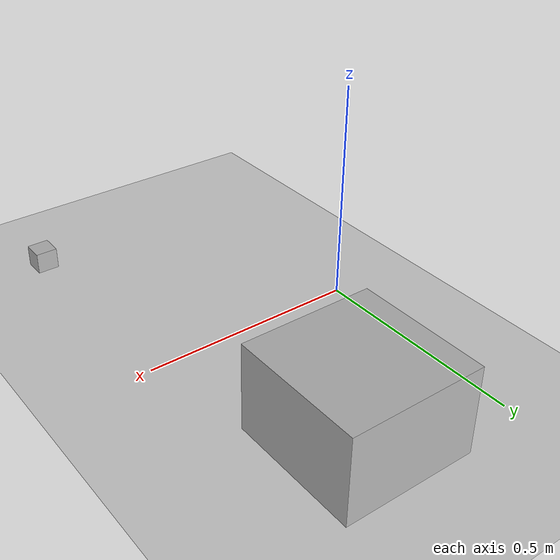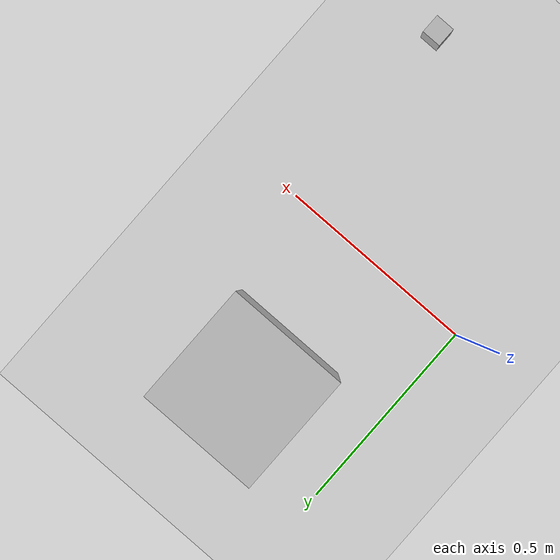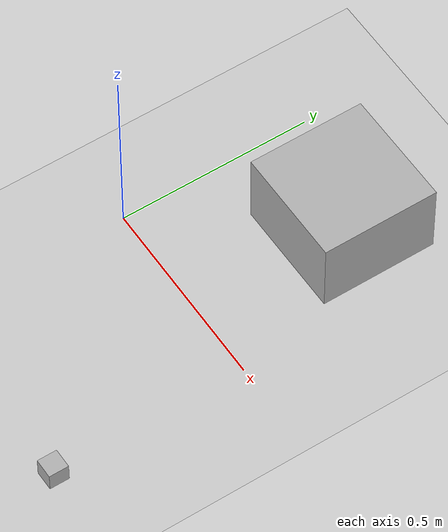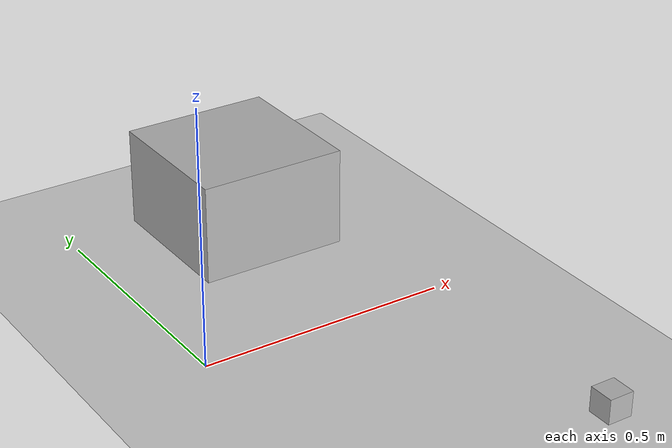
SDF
<?xml version="1.0" ?>
<sdf version='1.10'>
  <world name='empty'>
    <physics name='1ms' type='ignored'>
      <max_step_size>0.001</max_step_size>
      <real_time_factor>1</real_time_factor>
      <real_time_update_rate>1000</real_time_update_rate>
    </physics>
        <plugin
      filename="gz-sim-physics-system"
      name="gz::sim::systems::Physics">
      <engine>
        <filename>libgz-physics-bullet-featherstone-plugin.so</filename>
      </engine>
    </plugin>
    <plugin name='gz::sim::systems::UserCommands' filename='gz-sim-user-commands-system'/>
    <plugin name='gz::sim::systems::SceneBroadcaster' filename='gz-sim-scene-broadcaster-system'/>
    <plugin name='gz::sim::systems::Contact' filename='gz-sim-contact-system'/>
    <gravity>0 0 -9.8000000000000007</gravity>
    <magnetic_field>5.5644999999999998e-06 2.2875799999999999e-05 -4.2388400000000002e-05</magnetic_field>
    <atmosphere type='adiabatic'/>
    <scene>
      <ambient>0.400000006 0.400000006 0.400000006 1</ambient>
      <background>0.699999988 0.699999988 0.699999988 1</background>
      <shadows>true</shadows>
    </scene>
    <model name='ground_plane'>
      <static>true</static>
      <link name='link'>
        <collision name='collision'>
          <geometry>
            <plane>
              <normal>0 0 1</normal>
              <size>100 100</size>
            </plane>
          </geometry>
          <surface>
            <friction>
              <ode/>
            </friction>
            <bounce/>
            <contact/>
          </surface>
        </collision>
        <visual name='visual'>
          <geometry>
            <plane>
              <normal>0 0 1</normal>
              <size>100 100</size>
            </plane>
          </geometry>
          <material>
            <ambient>0.800000012 0.800000012 0.800000012 1</ambient>
            <diffuse>0.800000012 0.800000012 0.800000012 1</diffuse>
            <specular>0.800000012 0.800000012 0.800000012 1</specular>
          </material>
        </visual>
        <pose>0 0 0 0 0 0</pose>
        <inertial>
          <pose>0 0 0 0 0 0</pose>
          <mass>1</mass>
          <inertia>
            <ixx>1</ixx>
            <ixy>0</ixy>
            <ixz>0</ixz>
            <iyy>1</iyy>
            <iyz>0</iyz>
            <izz>1</izz>
          </inertia>
        </inertial>
        <enable_wind>false</enable_wind>
      </link>
      <pose>0 0 0 0 0 0</pose>
      <self_collide>false</self_collide>
    </model>
    <model name='box'>
      <pose>0.3 0.4 0.1 0 0 0</pose>
      <link name='box_link'>
        <inertial>
          <inertia>
            <ixx>0.16666</ixx>
            <ixy>0</ixy>
            <ixz>0</ixz>
            <iyy>0.16666</iyy>
            <iyz>0</iyz>
            <izz>0.16666</izz>
          </inertia>
          <mass>1</mass>
          <pose>0 0 0 0 0 0</pose>
        </inertial>
        <collision name='box_collision'>
          <geometry>
            <box>
              <size>0.3 0.3 0.2</size>
            </box>
          </geometry>
          <surface>
            <friction>
                <ode>
                  <mu>5.0</mu>   <!-- primary friction -->
                  <mu2>5.0</mu2> <!-- secondary friction -->
                </ode>
            </friction>
             <contact>
                <ode>
                  <kp>100000</kp> <!-- contact stiffness -->
                  <kd>1.0</kd>    <!-- contact damping -->
                  <max_vel>0.1</max_vel>  <!-- optional: max contact velocity -->
                  <min_depth>0.001</min_depth> <!-- optional: min penetration depth -->
                </ode>
            </contact>
            <bounce>
              <restitution_coefficient>0.0</restitution_coefficient>
            </bounce>
          </surface>
        </collision>
        <visual name='box_visual'>
          <geometry>
            <box>
              <size>0.3 0.3 0.2</size>
            </box>
          </geometry>
          <material>
            <ambient>0.300000012 0.300000012 0.300000012 1</ambient>
            <diffuse>0.699999988 0.699999988 0.699999988 1</diffuse>
            <specular>1 1 1 1</specular>
          </material>
        </visual>
        <pose>0 0 0 0 0 0</pose>
        <enable_wind>false</enable_wind>
      </link>
      <static>false</static>
      <self_collide>false</self_collide>
    </model>
      <model name='box_0'>
      <pose>0.5 -0.5 0.025 0 0 0</pose>
      <link name='box_link'>
        <inertial>
          <inertia>
            <ixx>0.004167</ixx>
            <ixy>0</ixy>
            <ixz>0</ixz>
            <iyy>0.004167</iyy>
            <iyz>0</iyz>
            <izz>0.004167</izz>
          </inertia>
          <mass>0.05</mass>
          <pose>0 0 0 0 0 0</pose>
        </inertial>
        <collision name='box_collision'>
          <geometry>
            <box>
              <size>0.05 0.05 0.05</size>
            </box>
          </geometry>
          <surface>
            <friction>
                <ode>
                  <mu>100.0</mu>   <!-- primary friction -->
                  <mu2>100.0</mu2> <!-- secondary friction -->
                </ode>
            </friction>
             <contact>
                <ode>
                  <kp>100000000</kp> <!-- contact stiffness -->
                  <kd>1.0</kd>    <!-- contact damping -->
                  <max_vel>0.1</max_vel>  <!-- optional: max contact velocity -->
                  <min_depth>0.001</min_depth> <!-- optional: min penetration depth -->
                </ode>
            </contact>
            <bounce>
              <restitution_coefficient>0.0</restitution_coefficient>
            </bounce>
          </surface>
        </collision>
        <visual name='box_visual'>
          <geometry>
            <box>
              <size>0.05 0.05 0.05</size>
            </box>
          </geometry>
          <material>
            <ambient>0.300000012 0.300000012 0.300000012 1</ambient>
            <diffuse>0.699999988 0.699999988 0.699999988 1</diffuse>
            <specular>1 1 1 1</specular>
          </material>
        </visual>
        <pose>0 0 0 0 0 0</pose>
        <enable_wind>false</enable_wind>
      </link>
      <static>false</static>
      <self_collide>false</self_collide>
    </model>
    <light name='sun' type='directional'>
      <pose>0 0 10 0 0 0</pose>
      <cast_shadows>true</cast_shadows>
      <intensity>1</intensity>
      <direction>-0.5 0.10000000000000001 -0.90000000000000002</direction>
      <diffuse>0.800000012 0.800000012 0.800000012 1</diffuse>
      <specular>0.200000003 0.200000003 0.200000003 1</specular>
      <attenuation>
        <range>1000</range>
        <linear>0.01</linear>
        <constant>0.90000000000000002</constant>
        <quadratic>0.001</quadratic>
      </attenuation>
      <spot>
        <inner_angle>0</inner_angle>
        <outer_angle>0</outer_angle>
        <falloff>0</falloff>
      </spot>
    </light>
  </world>
</sdf>
